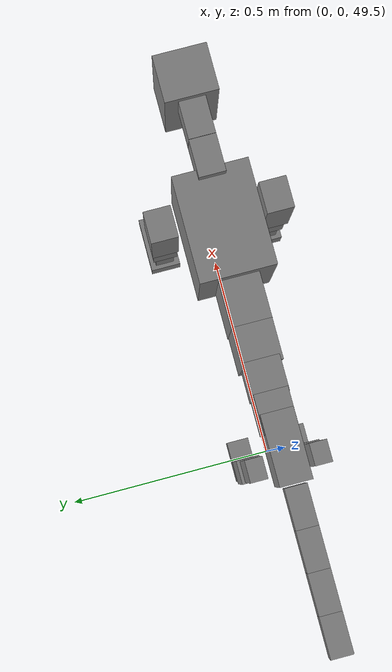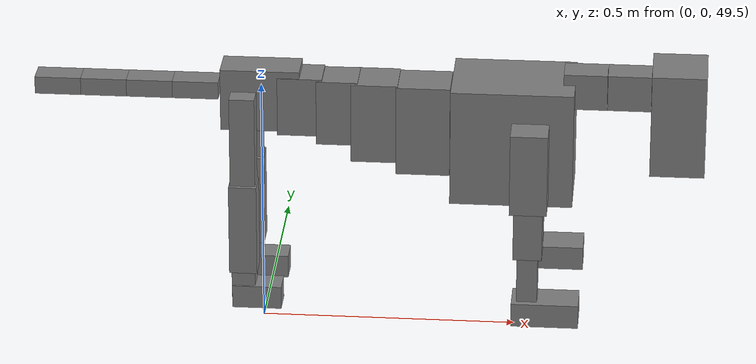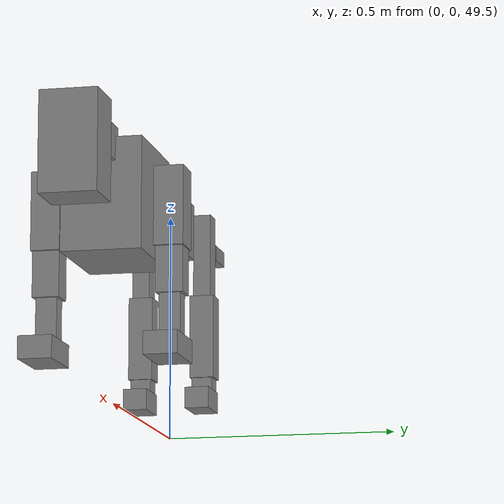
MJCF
<mujoco model="dog">

    <default>
        <joint armature="0.02" stiffness="1" damping="0.2" limited="true"/>
        <geom condim="3" friction="1 0.05 0.05" margin="0.01"/>
        <motor ctrllimited="true" ctrlrange="-1.0 1.0" forcelimited="true" gear="50"/>
    </default>

    <compiler inertiafromgeom="true" angle="radian"/>

    <option timestep="0.016" iterations="50" tolerance="1e-10" solver="Newton" jacobian="dense" cone="pyramidal"/>

    <size nconmax="20000" njmax="60000" nstack="5000000"/>
    <visual>
        <map force="0.1" zfar="30"/>
        <rgba haze="0.15 0.25 0.35 1"/>
        <quality shadowsize="2048"/>
        <global offwidth="800" offheight="800"/>
    </visual>

    <asset>
        <texture type="skybox" builtin="gradient" rgb1="0.3 0.5 0.7" rgb2="0 0 0" width="512" height="512"/>
        <texture name="texplane" type="2d" builtin="checker" rgb1=".2 .3 .4" rgb2=".1 0.15 0.2" width="512" height="512"
                 mark="cross" markrgb=".8 .8 .8"/>
        <texture name="texgeom" type="cube" builtin="flat" mark="cross" width="127" height="1278" rgb1="0.8 0.6 0.4"
                 rgb2="0.8 0.6 0.4" markrgb="1 1 1" random="0.01"/>

        <material name="matplane" reflectance="0.3" texture="texplane" texrepeat="1 1" texuniform="true"/>
        <material name="matgeom" texture="texgeom" texuniform="true" rgba="0.8 0.6 .4 1"/>
    </asset>

    <worldbody>
        <geom name="floor" pos="0 0 0" size="0 0 .25" type="plane" material="matplane" condim="3"/>

        <light directional="false" diffuse=".2 .2 .2" specular="0 0 0" pos="0 0 5" dir="0 0 -1" castshadow="false"/>
        <light mode="targetbodycom" target="torso" directional="false" diffuse=".8 .8 .8" specular="0.3 0.3 0.3"
               pos="0 0 4.0" dir="0 0 -1"/>

        <body name="root" pos="0 0 50">
            <freejoint name="root_1"/>
            <geom type="box" pos="0 0 -0.02" size="0.0774  0.0358  0.063" density="2030"/>

            <body name="spine1" pos="0.054 0 0">
                <joint name="spine1_y" axis="0 1 0" range="0 0.7" limited="true"/>
                <geom type="box" pos="0.02375 0 -0.03" size="0.04375  0.0375  0.05985" density="2030"/>

                <body name="spine2" pos="0.0612 0 0">
                    <joint name="spine2_y" axis="0 1 0" range="-0.15 0.15" limited="true"/>
                    <geom type="box" pos="0.03555  0  -0.04" size="0.04055  0.039  0.06615" density="2030"/>

                    <body name="spine3" pos="0.0730 0 0">
                        <joint name="spine3_y" axis="0 1 0" range="-0.15 0.15" limited="true"/>
                        <geom type="box" pos="0.03555  0  -0.057" size="0.04555  0.0445  0.081" density="2030"/>

                        <body name="spine4" pos="0.0780 0 0">
                            <joint name="spine4_y" axis="0 1 0" range="-0.15 0.15" limited="true"/>
                            <geom type="box" pos="0.05265  0  -0.07" size="0.05265  0.045  0.09135" density="2030"/>

                            <body name="torso" pos="0.1082 0 0">
                                <joint name="torso_y" axis="0 1 0" range="-0.15 0.15" limited="true"/>
                                <geom type="box" pos="0.11925  0  -0.085" size="0.11925  0.085  0.11745"
                                      density="2030"/>

                                <body name="neck1" pos="0.2160  0   0.0180">
                                    <joint name="neck1_y" axis="0 1 0" range="-1.2  -1" limited="true"/>
                                    <geom type="box" pos="0.0423  0  0" size="0.0423  0.03  0.036" density="2325"/>

                                    <body name="neck2" pos="0.0853  0  0">
                                        <joint name="neck2_y" axis="0 1 0" range="0.1  0" limited="true"/>
                                        <geom type="box" pos="0.0423  0  0" size="0.0423  0.03  0.036" density="2325"/>

                                        <body name="head" pos="0.0853  0  0">
                                            <joint name="head_y" axis="0 1 0" range="-0.3  -0.2" limited="true"/>
                                            <geom type="box" pos="0.0531  0  -0.055" size="0.0531  0.06  0.1044"
                                                  density="4030"/>

                                        </body>
                                    </body>
                                </body>

                                <body name="front_shoulder" pos="0.156  0   -0.0480">
                                    <joint name="front_shoulder_y" axis="0 1 0" range="-1 1.5" limited="true"/>
                                    <geom type="box" pos="0 0.13 -0.0563" size="0.0362  0.0309  0.0830" density="1158"/>
                                    <geom type="box" pos="0 -0.13 -0.0563" size="0.0362  0.0309  0.0830"
                                          density="1158"/>

                                    <body name="front_elbow" pos="0  0  -0.1127">
                                        <joint name="front_elbow_y" axis="0 1 0" range="-2 0" limited="true"/>
                                        <geom type="box" pos="0 0.13 -0.0615" size="0.0279  0.0285  0.0615"
                                              density="1081"/>
                                        <geom type="box" pos="0 -0.13 -0.0615" size="0.0279  0.0285  0.0615"
                                              density="1081"/>

                                        <body name="front_wrist" pos="0  0  -0.1230">
                                            <joint name="front_wrist_y" axis="0 1 0" range="-0.2 0" limited="true"/>
                                            <geom type="box" pos="0 0.13 -0.0537" size="0.0201  0.0224  0.0669"
                                                  density="1664"/>
                                            <geom type="box" pos="0 -0.13 -0.0537" size="0.0201  0.0224  0.0669"
                                                  density="1664"/>

                                            <body name="front_finger_end" pos="0  0  -0.1075">
                                                <joint name="front_finger_y" axis="0 1 0" range="-0.4 1"
                                                       limited="true"/>
                                                <geom type="box" pos="0.0357  0.13  -0.0089"
                                                      size="0.0654  0.0357  0.0239" density="1515"/>
                                                <geom type="box" pos="0.0357  -0.13  -0.0089"
                                                      size="0.0654  0.0357  0.0239" density="1515"/>

                                            </body>

                                        </body>
                                    </body>
                                </body>

                            </body>
                        </body>
                    </body>
                </body>
            </body>

            <body name="back_hip" pos="-0.03 0 -0.018">
                <joint name="back_hip_y" axis="0 1 0" range="-1.5 0.3" limited="true"/>
                <geom type="box" pos="0 0.07 -0.0883" size="0.0246  0.0193  0.1111" density="1154"/>
                <geom type="box" pos="0 -0.07 -0.0883" size="0.0246  0.0193  0.1111" density="1154"/>

                <body name="back_knee" pos="0  0  -0.1766">
                    <joint name="back_knee_y" axis="0 1 0" range="0 2.8" limited="true"/>
                    <geom type="box" pos="0 0.07 -0.0769" size="0.0272  0.0268  0.0924" density="1227"/>
                    <geom type="box" pos="0 -0.07 -0.0769" size="0.0272  0.0268  0.0924" density="1227"/>

                    <body name="back_ankle" pos="0  0  -0.1538">
                        <joint name="back_ankle_y" axis="0 1 0" range="-2.2 0" limited="true"/>
                        <geom type="box" pos="0 0.07 -0.0297" size="0.0229  0.0229  0.0410" density="1284"/>
                        <geom type="box" pos="0 -0.07 -0.0297" size="0.0229  0.0229  0.0410" density="1284"/>

                        <body name="back_toe_end" pos="0  0  -0.0595">
                            <joint name="back_toe_y" axis="0 1 0" range="-0.4 1" limited="true"/>
                            <geom type="box" pos="0.0263  0.07  -0.0082" size="0.0483  0.0263  0.0232" density="1515"/>
                            <geom type="box" pos="0.0263  -0.07  -0.0082" size="0.0483  0.0263  0.0232" density="1515"/>

                        </body>
                    </body>
                </body>
            </body>

            <body name="tail1" pos="-0.074 0 -0.006">
                <joint name="tail1_y" axis="0 1 0" range="-0.2 0.2" limited="true"/>
                <geom type="box" pos="-0.0536  0  0" size="0.045  0.025  0.0175" density="1587"/>

                <body name="tail2" pos="-0.09 0 0">
                    <joint name="tail2_y" axis="0 1 0" range="-0.2 0.2" limited="true"/>
                    <geom type="box" pos="-0.0536  0  0" size="0.045  0.025  0.0175" density="1587"/>

                    <body name="tail3" pos="-0.09 0 0">
                        <joint name="tail3_y" axis="0 1 0" range="-0.2 0.2" limited="true"/>
                        <geom type="box" pos="-0.0536  0  0" size="0.045  0.025  0.0175" density="1587"/>

                        <body name="tail4" pos="-0.09 0 0">
                            <joint name="tail4_y" axis="0 1 0" range="-0.2 0.2" limited="true"/>
                            <geom type="box" pos="-0.0536  0  0" size="0.045  0.025  0.0175" density="1587"/>

                        </body>
                    </body>
                </body>
            </body>
        </body>
    </worldbody>

    <actuator>
        <motor joint="spine1_y" forcerange="-150 150     "/>
        <motor joint="spine2_y" forcerange="-150 150     "/>
        <motor joint="spine3_y" forcerange="-150 150     "/>
        <motor joint="spine4_y" forcerange="-150 150     "/>
        <motor joint="torso_y" forcerange="-150 150     "/>
        <motor joint="neck1_y" forcerange="-100 100       "/>
        <motor joint="neck2_y" forcerange="-100 100       "/>
        <motor joint="head_y" forcerange="-150 150       "/>
        <motor joint="front_shoulder_y" forcerange="-198.78 107.27"/>
        <motor joint="front_elbow_y" forcerange="-157.67 149.93"/>
        <motor joint="front_wrist_y" forcerange="-55.91 122.99"/>
        <motor joint="front_finger_y" forcerange="-55.72 94.53"/>
        <motor joint="back_hip_y" forcerange="-246.49 210.63"/>
        <motor joint="back_knee_y" forcerange="-328.48 261.22"/>
        <motor joint="back_angle_y" forcerange="-136.49 129.17"/>
        <motor joint="back_toe_y" forcerange="-105.45 25.28"/>
        <motor joint="tail1_y" forcerange="-50 50     "/>
        <motor joint="tail2_y" forcerange="-50 50     "/>
        <motor joint="tail3_y" forcerange="-50 50     "/>
        <motor joint="tail4_y" forcerange="-50 50     "/>
    </actuator>
</mujoco>
